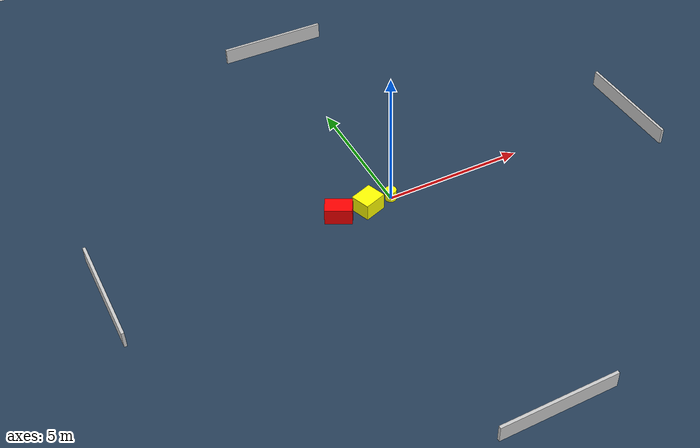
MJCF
<?xml version="1.0" ?>
<mujoco model="generated_environment">
  <option timestep="0.01" integrator="RK4" cone="elliptic"/>
  <default>
    <geom density="1"/>
  </default>
  <asset>
    <texture builtin="gradient" height="3072" name="skybox" rgb1="0.3 0.5 0.7" rgb2="0 0 0" type="skybox" width="512"/>
    <texture builtin="checker" height="300" name="groundplane" rgb1="0.2 0.3 0.4" rgb2="0.1 0.2 0.3" type="2d" width="300"/>
    <material name="groundplane" reflectance="0.2" texrepeat="5 5" texture="groundplane"/>
  </asset>
  <worldbody>
    <light dir="0 0 -1" directional="true" pos="0 0 1.5"/>
    <geom condim="3" friction="0.5 0.005 0.001" material="groundplane" name="floor" pos="0 0 0" size="0 0 0.05" type="plane"/>
    <body name="walls">
      <geom name="wall_1" condim="4" pos="-10.0 0.0 0.3" rgba="0.800000011920929 0.800000011920929 0.800000011920929 1.0" size="0.05 2.0 0.3" type="box"/>
      <geom name="wall_2" condim="4" pos="10.0 0.0 0.3" rgba="0.800000011920929 0.800000011920929 0.800000011920929 1.0" size="0.05 2.0 0.3" type="box"/>
      <geom name="wall_3" condim="4" pos="0.0 -10.0 0.3" rgba="0.800000011920929 0.800000011920929 0.800000011920929 1.0" size="2.0 0.05 0.3" type="box"/>
      <geom name="wall_4" condim="4" pos="0.0 10.0 0.3" rgba="0.800000011920929 0.800000011920929 0.800000011920929 1.0" size="2.0 0.05 0.3" type="box"/>
    </body>
    <body name="robot">
      <joint name="joint_x" type="slide" pos="0 0 0" axis="1 0 0"/>
      <joint name="joint_y" type="slide" pos="0 0 0" axis="0 1 0"/>
      <geom name="robot" type="cylinder" pos="0.0 0.0 0.2" size="0.2 0.2 0.0" mass="5.0" friction="1.0 0.005 0.0001" condim="4" rgba="1.0 1.0 0.0 1.0"/>
    </body>
    <body name="obstacle_1_movable">
      <geom name="obstacle_1_movable" condim="4" pos="-0.9151324276456543 -0.10510565696664953 0.3" euler="0 0 109.70763239665429" friction="0.0 0.005 0.001" rgba="1.0 1.0 0.0 1.0" size="0.3552394789366922 0.41200428229212316 0.3" type="box" mass="0.1"/>
      <joint type="free"/>
    </body>
    <body name="obstacle_2_static">
      <geom name="obstacle_2_static" condim="4" pos="-1.9882493724551935 -0.039939357321169155 0.3" euler="0 0 331.7876015126167" friction="0.0 0.005 0.001" rgba="1.0 0.0 0.0 1.0" size="0.4682952934928539 0.29977762652865175 0.3" type="box"/>
    </body>
  </worldbody>
  <actuator>
    <motor name="actuator_x" joint="joint_x" gear="1" ctrlrange="-1 1"/>
    <motor name="actuator_y" joint="joint_y" gear="1" ctrlrange="-1 1"/>
  </actuator>
</mujoco>
